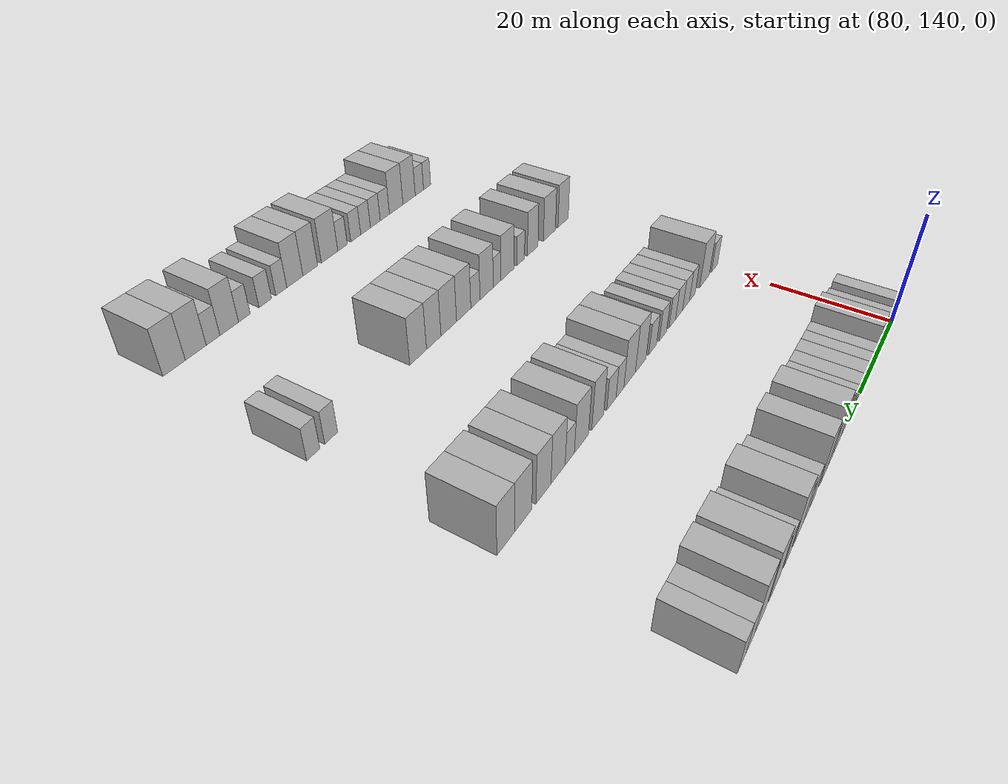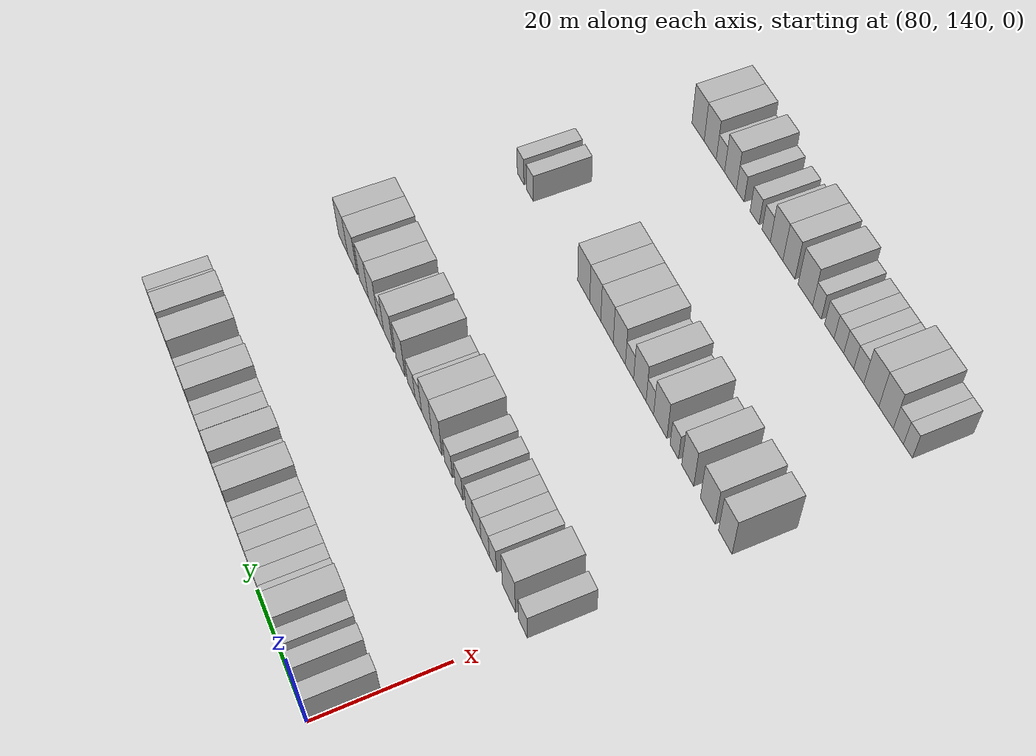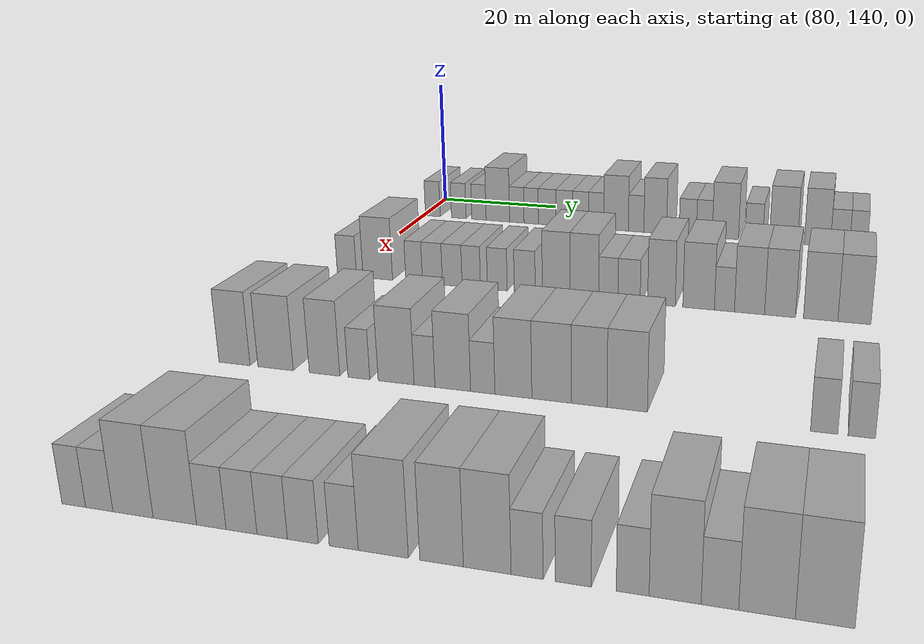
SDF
<sdf version="1.6">
 <world name="default">
  <model name="building_623">
   <static>1</static>
   <pose>85.0000 141.6299 0 0.000000 0.000000 0.000000</pose>
   <link name="link">
    <pose>0 0 3.00 0 0 0</pose>
    <collision name="collision"><geometry><box><size>10.0000 2.6080 6.0000</size></box></geometry></collision>
    <visual name="visual">
     <cast_shadows>0</cast_shadows>
     <geometry><box><size>10.0000 2.6080 6.0000</size></box></geometry>
     <material>
      <script>
       <uri>model://HANNAS_wall/materials/scripts</uri>
       <uri>model://HANNAS_wall/materials/textures</uri>
       <name>vrc/HANNAS_wall</name>
      </script>
     </material>
    </visual>
   </link>
  </model>
  <model name="building_624">
   <static>1</static>
   <pose>85.0000 146.2036 0 0.000000 0.000000 0.000000</pose>
   <link name="link">
    <pose>0 0 3.00 0 0 0</pose>
    <collision name="collision"><geometry><box><size>10.0000 2.5395 6.0000</size></box></geometry></collision>
    <visual name="visual">
     <cast_shadows>0</cast_shadows>
     <geometry><box><size>10.0000 2.5395 6.0000</size></box></geometry>
     <material>
      <script>
       <uri>model://HANNAS_wall/materials/scripts</uri>
       <uri>model://HANNAS_wall/materials/textures</uri>
       <name>vrc/HANNAS_wall</name>
      </script>
     </material>
    </visual>
   </link>
  </model>
  <model name="building_625">
   <static>1</static>
   <pose>85.0000 149.7240 0 0.000000 0.000000 0.000000</pose>
   <link name="link">
    <pose>0 0 3.00 0 0 0</pose>
    <collision name="collision"><geometry><box><size>10.0000 2.5013 6.0000</size></box></geometry></collision>
    <visual name="visual">
     <cast_shadows>0</cast_shadows>
     <geometry><box><size>10.0000 2.5013 6.0000</size></box></geometry>
     <material>
      <script>
       <uri>model://HANNAS_wall/materials/scripts</uri>
       <uri>model://HANNAS_wall/materials/textures</uri>
       <name>vrc/HANNAS_wall</name>
      </script>
     </material>
    </visual>
   </link>
  </model>
  <model name="building_626">
   <static>1</static>
   <pose>85.0000 152.9900 0 0.000000 0.000000 0.000000</pose>
   <link name="link">
    <pose>0 0 4.50 0 0 0</pose>
    <collision name="collision"><geometry><box><size>10.0000 4.0306 9.0000</size></box></geometry></collision>
    <visual name="visual">
     <cast_shadows>0</cast_shadows>
     <geometry><box><size>10.0000 4.0306 9.0000</size></box></geometry>
     <material>
      <script>
       <uri>model://HANNAS_wall/materials/scripts</uri>
       <uri>model://HANNAS_wall/materials/textures</uri>
       <name>vrc/HANNAS_wall</name>
      </script>
     </material>
    </visual>
   </link>
  </model>
  <model name="building_627">
   <static>1</static>
   <pose>85.0000 156.2433 0 0.000000 0.000000 0.000000</pose>
   <link name="link">
    <pose>0 0 3.00 0 0 0</pose>
    <collision name="collision"><geometry><box><size>10.0000 2.4761 6.0000</size></box></geometry></collision>
    <visual name="visual">
     <cast_shadows>0</cast_shadows>
     <geometry><box><size>10.0000 2.4761 6.0000</size></box></geometry>
     <material>
      <script>
       <uri>model://HANNAS_wall/materials/scripts</uri>
       <uri>model://HANNAS_wall/materials/textures</uri>
       <name>vrc/HANNAS_wall</name>
      </script>
     </material>
    </visual>
   </link>
  </model>
  <model name="building_628">
   <static>1</static>
   <pose>85.0000 158.6928 0 0.000000 0.000000 0.000000</pose>
   <link name="link">
    <pose>0 0 3.00 0 0 0</pose>
    <collision name="collision"><geometry><box><size>10.0000 2.4228 6.0000</size></box></geometry></collision>
    <visual name="visual">
     <cast_shadows>0</cast_shadows>
     <geometry><box><size>10.0000 2.4228 6.0000</size></box></geometry>
     <material>
      <script>
       <uri>model://HANNAS_wall/materials/scripts</uri>
       <uri>model://HANNAS_wall/materials/textures</uri>
       <name>vrc/HANNAS_wall</name>
      </script>
     </material>
    </visual>
   </link>
  </model>
  <model name="building_629">
   <static>1</static>
   <pose>85.0000 161.3838 0 0.000000 0.000000 0.000000</pose>
   <link name="link">
    <pose>0 0 3.00 0 0 0</pose>
    <collision name="collision"><geometry><box><size>10.0000 2.9592 6.0000</size></box></geometry></collision>
    <visual name="visual">
     <cast_shadows>0</cast_shadows>
     <geometry><box><size>10.0000 2.9592 6.0000</size></box></geometry>
     <material>
      <script>
       <uri>model://HANNAS_wall/materials/scripts</uri>
       <uri>model://HANNAS_wall/materials/textures</uri>
       <name>vrc/HANNAS_wall</name>
      </script>
     </material>
    </visual>
   </link>
  </model>
  <model name="building_630">
   <static>1</static>
   <pose>85.0000 164.2709 0 0.000000 0.000000 0.000000</pose>
   <link name="link">
    <pose>0 0 3.00 0 0 0</pose>
    <collision name="collision"><geometry><box><size>10.0000 2.8151 6.0000</size></box></geometry></collision>
    <visual name="visual">
     <cast_shadows>0</cast_shadows>
     <geometry><box><size>10.0000 2.8151 6.0000</size></box></geometry>
     <material>
      <script>
       <uri>model://HANNAS_wall/materials/scripts</uri>
       <uri>model://HANNAS_wall/materials/textures</uri>
       <name>vrc/HANNAS_wall</name>
      </script>
     </material>
    </visual>
   </link>
  </model>
  <model name="building_631">
   <static>1</static>
   <pose>85.0000 166.9735 0 0.000000 0.000000 0.000000</pose>
   <link name="link">
    <pose>0 0 3.00 0 0 0</pose>
    <collision name="collision"><geometry><box><size>10.0000 2.5901 6.0000</size></box></geometry></collision>
    <visual name="visual">
     <cast_shadows>0</cast_shadows>
     <geometry><box><size>10.0000 2.5901 6.0000</size></box></geometry>
     <material>
      <script>
       <uri>model://HANNAS_wall/materials/scripts</uri>
       <uri>model://HANNAS_wall/materials/textures</uri>
       <name>vrc/HANNAS_wall</name>
      </script>
     </material>
    </visual>
   </link>
  </model>
  <model name="building_632">
   <static>1</static>
   <pose>85.0000 169.5380 0 0.000000 0.000000 0.000000</pose>
   <link name="link">
    <pose>0 0 3.00 0 0 0</pose>
    <collision name="collision"><geometry><box><size>10.0000 2.5390 6.0000</size></box></geometry></collision>
    <visual name="visual">
     <cast_shadows>0</cast_shadows>
     <geometry><box><size>10.0000 2.5390 6.0000</size></box></geometry>
     <material>
      <script>
       <uri>model://HANNAS_wall/materials/scripts</uri>
       <uri>model://HANNAS_wall/materials/textures</uri>
       <name>vrc/HANNAS_wall</name>
      </script>
     </material>
    </visual>
   </link>
  </model>
  <model name="building_633">
   <static>1</static>
   <pose>85.0000 172.8119 0 0.000000 0.000000 0.000000</pose>
   <link name="link">
    <pose>0 0 4.50 0 0 0</pose>
    <collision name="collision"><geometry><box><size>10.0000 4.0086 9.0000</size></box></geometry></collision>
    <visual name="visual">
     <cast_shadows>0</cast_shadows>
     <geometry><box><size>10.0000 4.0086 9.0000</size></box></geometry>
     <material>
      <script>
       <uri>model://HANNAS_wall/materials/scripts</uri>
       <uri>model://HANNAS_wall/materials/textures</uri>
       <name>vrc/HANNAS_wall</name>
      </script>
     </material>
    </visual>
   </link>
  </model>
  <model name="building_634">
   <static>1</static>
   <pose>85.0000 176.0708 0 0.000000 0.000000 0.000000</pose>
   <link name="link">
    <pose>0 0 3.00 0 0 0</pose>
    <collision name="collision"><geometry><box><size>10.0000 2.5092 6.0000</size></box></geometry></collision>
    <visual name="visual">
     <cast_shadows>0</cast_shadows>
     <geometry><box><size>10.0000 2.5092 6.0000</size></box></geometry>
     <material>
      <script>
       <uri>model://HANNAS_wall/materials/scripts</uri>
       <uri>model://HANNAS_wall/materials/textures</uri>
       <name>vrc/HANNAS_wall</name>
      </script>
     </material>
    </visual>
   </link>
  </model>
  <model name="building_635">
   <static>1</static>
   <pose>85.0000 179.1409 0 0.000000 0.000000 0.000000</pose>
   <link name="link">
    <pose>0 0 4.50 0 0 0</pose>
    <collision name="collision"><geometry><box><size>10.0000 3.6311 9.0000</size></box></geometry></collision>
    <visual name="visual">
     <cast_shadows>0</cast_shadows>
     <geometry><box><size>10.0000 3.6311 9.0000</size></box></geometry>
     <material>
      <script>
       <uri>model://HANNAS_wall/materials/scripts</uri>
       <uri>model://HANNAS_wall/materials/textures</uri>
       <name>vrc/HANNAS_wall</name>
      </script>
     </material>
    </visual>
   </link>
  </model>
  <model name="building_636">
   <static>1</static>
   <pose>85.0000 184.3225 0 0.000000 0.000000 0.000000</pose>
   <link name="link">
    <pose>0 0 3.00 0 0 0</pose>
    <collision name="collision"><geometry><box><size>10.0000 2.7321 6.0000</size></box></geometry></collision>
    <visual name="visual">
     <cast_shadows>0</cast_shadows>
     <geometry><box><size>10.0000 2.7321 6.0000</size></box></geometry>
     <material>
      <script>
       <uri>model://HANNAS_wall/materials/scripts</uri>
       <uri>model://HANNAS_wall/materials/textures</uri>
       <name>vrc/HANNAS_wall</name>
      </script>
     </material>
    </visual>
   </link>
  </model>
  <model name="building_637">
   <static>1</static>
   <pose>85.0000 186.9296 0 0.000000 0.000000 0.000000</pose>
   <link name="link">
    <pose>0 0 3.00 0 0 0</pose>
    <collision name="collision"><geometry><box><size>10.0000 2.4823 6.0000</size></box></geometry></collision>
    <visual name="visual">
     <cast_shadows>0</cast_shadows>
     <geometry><box><size>10.0000 2.4823 6.0000</size></box></geometry>
     <material>
      <script>
       <uri>model://HANNAS_wall/materials/scripts</uri>
       <uri>model://HANNAS_wall/materials/textures</uri>
       <name>vrc/HANNAS_wall</name>
      </script>
     </material>
    </visual>
   </link>
  </model>
  <model name="building_638">
   <static>1</static>
   <pose>85.0000 190.2188 0 0.000000 0.000000 0.000000</pose>
   <link name="link">
    <pose>0 0 4.50 0 0 0</pose>
    <collision name="collision"><geometry><box><size>10.0000 4.0960 9.0000</size></box></geometry></collision>
    <visual name="visual">
     <cast_shadows>0</cast_shadows>
     <geometry><box><size>10.0000 4.0960 9.0000</size></box></geometry>
     <material>
      <script>
       <uri>model://HANNAS_wall/materials/scripts</uri>
       <uri>model://HANNAS_wall/materials/textures</uri>
       <name>vrc/HANNAS_wall</name>
      </script>
     </material>
    </visual>
   </link>
  </model>
  <model name="building_639">
   <static>1</static>
   <pose>85.0000 194.6407 0 0.000000 0.000000 0.000000</pose>
   <link name="link">
    <pose>0 0 3.00 0 0 0</pose>
    <collision name="collision"><geometry><box><size>10.0000 2.7478 6.0000</size></box></geometry></collision>
    <visual name="visual">
     <cast_shadows>0</cast_shadows>
     <geometry><box><size>10.0000 2.7478 6.0000</size></box></geometry>
     <material>
      <script>
       <uri>model://HANNAS_wall/materials/scripts</uri>
       <uri>model://HANNAS_wall/materials/textures</uri>
       <name>vrc/HANNAS_wall</name>
      </script>
     </material>
    </visual>
   </link>
  </model>
  <model name="building_640">
   <static>1</static>
   <pose>85.0000 199.1554 0 0.000000 0.000000 0.000000</pose>
   <link name="link">
    <pose>0 0 4.50 0 0 0</pose>
    <collision name="collision"><geometry><box><size>10.0000 4.2816 9.0000</size></box></geometry></collision>
    <visual name="visual">
     <cast_shadows>0</cast_shadows>
     <geometry><box><size>10.0000 4.2816 9.0000</size></box></geometry>
     <material>
      <script>
       <uri>model://HANNAS_wall/materials/scripts</uri>
       <uri>model://HANNAS_wall/materials/textures</uri>
       <name>vrc/HANNAS_wall</name>
      </script>
     </material>
    </visual>
   </link>
  </model>
  <model name="building_641">
   <static>1</static>
   <pose>85.0000 204.2524 0 0.000000 0.000000 0.000000</pose>
   <link name="link">
    <pose>0 0 4.50 0 0 0</pose>
    <collision name="collision"><geometry><box><size>10.0000 3.9124 9.0000</size></box></geometry></collision>
    <visual name="visual">
     <cast_shadows>0</cast_shadows>
     <geometry><box><size>10.0000 3.9124 9.0000</size></box></geometry>
     <material>
      <script>
       <uri>model://HANNAS_wall/materials/scripts</uri>
       <uri>model://HANNAS_wall/materials/textures</uri>
       <name>vrc/HANNAS_wall</name>
      </script>
     </material>
    </visual>
   </link>
  </model>
  <model name="building_642">
   <static>1</static>
   <pose>85.0000 207.6236 0 0.000000 0.000000 0.000000</pose>
   <link name="link">
    <pose>0 0 3.00 0 0 0</pose>
    <collision name="collision"><geometry><box><size>10.0000 2.8298 6.0000</size></box></geometry></collision>
    <visual name="visual">
     <cast_shadows>0</cast_shadows>
     <geometry><box><size>10.0000 2.8298 6.0000</size></box></geometry>
     <material>
      <script>
       <uri>model://HANNAS_wall/materials/scripts</uri>
       <uri>model://HANNAS_wall/materials/textures</uri>
       <name>vrc/HANNAS_wall</name>
      </script>
     </material>
    </visual>
   </link>
  </model>
  <model name="building_643">
   <static>1</static>
   <pose>85.0000 210.3365 0 0.000000 0.000000 0.000000</pose>
   <link name="link">
    <pose>0 0 3.00 0 0 0</pose>
    <collision name="collision"><geometry><box><size>10.0000 2.5960 6.0000</size></box></geometry></collision>
    <visual name="visual">
     <cast_shadows>0</cast_shadows>
     <geometry><box><size>10.0000 2.5960 6.0000</size></box></geometry>
     <material>
      <script>
       <uri>model://HANNAS_wall/materials/scripts</uri>
       <uri>model://HANNAS_wall/materials/textures</uri>
       <name>vrc/HANNAS_wall</name>
      </script>
     </material>
    </visual>
   </link>
  </model>
  <model name="building_867">
   <static>1</static>
   <pose>115.0000 140.6493 0 0.000000 0.000000 0.000000</pose>
   <link name="link">
    <pose>0 0 3.00 0 0 0</pose>
    <collision name="collision"><geometry><box><size>10.0000 2.9138 6.0000</size></box></geometry></collision>
    <visual name="visual">
     <cast_shadows>0</cast_shadows>
     <geometry><box><size>10.0000 2.9138 6.0000</size></box></geometry>
     <material>
      <script>
       <uri>model://HANNAS_wall/materials/scripts</uri>
       <uri>model://HANNAS_wall/materials/textures</uri>
       <name>vrc/HANNAS_wall</name>
      </script>
     </material>
    </visual>
   </link>
  </model>
  <model name="building_868">
   <static>1</static>
   <pose>115.0000 145.3303 0 0.000000 0.000000 0.000000</pose>
   <link name="link">
    <pose>0 0 4.50 0 0 0</pose>
    <collision name="collision"><geometry><box><size>10.0000 4.4482 9.0000</size></box></geometry></collision>
    <visual name="visual">
     <cast_shadows>0</cast_shadows>
     <geometry><box><size>10.0000 4.4482 9.0000</size></box></geometry>
     <material>
      <script>
       <uri>model://HANNAS_wall/materials/scripts</uri>
       <uri>model://HANNAS_wall/materials/textures</uri>
       <name>vrc/HANNAS_wall</name>
      </script>
     </material>
    </visual>
   </link>
  </model>
  <model name="building_869">
   <static>1</static>
   <pose>115.0000 150.7834 0 0.000000 0.000000 0.000000</pose>
   <link name="link">
    <pose>0 0 3.00 0 0 0</pose>
    <collision name="collision"><geometry><box><size>10.0000 2.4580 6.0000</size></box></geometry></collision>
    <visual name="visual">
     <cast_shadows>0</cast_shadows>
     <geometry><box><size>10.0000 2.4580 6.0000</size></box></geometry>
     <material>
      <script>
       <uri>model://HANNAS_wall/materials/scripts</uri>
       <uri>model://HANNAS_wall/materials/textures</uri>
       <name>vrc/HANNAS_wall</name>
      </script>
     </material>
    </visual>
   </link>
  </model>
  <model name="building_870">
   <static>1</static>
   <pose>115.0000 153.4814 0 0.000000 0.000000 0.000000</pose>
   <link name="link">
    <pose>0 0 3.00 0 0 0</pose>
    <collision name="collision"><geometry><box><size>10.0000 2.9379 6.0000</size></box></geometry></collision>
    <visual name="visual">
     <cast_shadows>0</cast_shadows>
     <geometry><box><size>10.0000 2.9379 6.0000</size></box></geometry>
     <material>
      <script>
       <uri>model://HANNAS_wall/materials/scripts</uri>
       <uri>model://HANNAS_wall/materials/textures</uri>
       <name>vrc/HANNAS_wall</name>
      </script>
     </material>
    </visual>
   </link>
  </model>
  <model name="building_871">
   <static>1</static>
   <pose>115.0000 156.3873 0 0.000000 0.000000 0.000000</pose>
   <link name="link">
    <pose>0 0 3.00 0 0 0</pose>
    <collision name="collision"><geometry><box><size>10.0000 2.8739 6.0000</size></box></geometry></collision>
    <visual name="visual">
     <cast_shadows>0</cast_shadows>
     <geometry><box><size>10.0000 2.8739 6.0000</size></box></geometry>
     <material>
      <script>
       <uri>model://HANNAS_wall/materials/scripts</uri>
       <uri>model://HANNAS_wall/materials/textures</uri>
       <name>vrc/HANNAS_wall</name>
      </script>
     </material>
    </visual>
   </link>
  </model>
  <model name="building_872">
   <static>1</static>
   <pose>115.0000 159.1533 0 0.000000 0.000000 0.000000</pose>
   <link name="link">
    <pose>0 0 3.00 0 0 0</pose>
    <collision name="collision"><geometry><box><size>10.0000 2.6580 6.0000</size></box></geometry></collision>
    <visual name="visual">
     <cast_shadows>0</cast_shadows>
     <geometry><box><size>10.0000 2.6580 6.0000</size></box></geometry>
     <material>
      <script>
       <uri>model://HANNAS_wall/materials/scripts</uri>
       <uri>model://HANNAS_wall/materials/textures</uri>
       <name>vrc/HANNAS_wall</name>
      </script>
     </material>
    </visual>
   </link>
  </model>
  <model name="building_873">
   <static>1</static>
   <pose>115.0000 162.8984 0 0.000000 0.000000 0.000000</pose>
   <link name="link">
    <pose>0 0 3.00 0 0 0</pose>
    <collision name="collision"><geometry><box><size>10.0000 2.8322 6.0000</size></box></geometry></collision>
    <visual name="visual">
     <cast_shadows>0</cast_shadows>
     <geometry><box><size>10.0000 2.8322 6.0000</size></box></geometry>
     <material>
      <script>
       <uri>model://HANNAS_wall/materials/scripts</uri>
       <uri>model://HANNAS_wall/materials/textures</uri>
       <name>vrc/HANNAS_wall</name>
      </script>
     </material>
    </visual>
   </link>
  </model>
  <model name="building_874">
   <static>1</static>
   <pose>115.0000 166.7925 0 0.000000 0.000000 0.000000</pose>
   <link name="link">
    <pose>0 0 3.00 0 0 0</pose>
    <collision name="collision"><geometry><box><size>10.0000 2.9561 6.0000</size></box></geometry></collision>
    <visual name="visual">
     <cast_shadows>0</cast_shadows>
     <geometry><box><size>10.0000 2.9561 6.0000</size></box></geometry>
     <material>
      <script>
       <uri>model://HANNAS_wall/materials/scripts</uri>
       <uri>model://HANNAS_wall/materials/textures</uri>
       <name>vrc/HANNAS_wall</name>
      </script>
     </material>
    </visual>
   </link>
  </model>
  <model name="building_875">
   <static>1</static>
   <pose>115.0000 171.1844 0 0.000000 0.000000 0.000000</pose>
   <link name="link">
    <pose>0 0 4.50 0 0 0</pose>
    <collision name="collision"><geometry><box><size>10.0000 3.8277 9.0000</size></box></geometry></collision>
    <visual name="visual">
     <cast_shadows>0</cast_shadows>
     <geometry><box><size>10.0000 3.8277 9.0000</size></box></geometry>
     <material>
      <script>
       <uri>model://HANNAS_wall/materials/scripts</uri>
       <uri>model://HANNAS_wall/materials/textures</uri>
       <name>vrc/HANNAS_wall</name>
      </script>
     </material>
    </visual>
   </link>
  </model>
  <model name="building_876">
   <static>1</static>
   <pose>115.0000 175.0791 0 0.000000 0.000000 0.000000</pose>
   <link name="link">
    <pose>0 0 4.50 0 0 0</pose>
    <collision name="collision"><geometry><box><size>10.0000 3.9616 9.0000</size></box></geometry></collision>
    <visual name="visual">
     <cast_shadows>0</cast_shadows>
     <geometry><box><size>10.0000 3.9616 9.0000</size></box></geometry>
     <material>
      <script>
       <uri>model://HANNAS_wall/materials/scripts</uri>
       <uri>model://HANNAS_wall/materials/textures</uri>
       <name>vrc/HANNAS_wall</name>
      </script>
     </material>
    </visual>
   </link>
  </model>
  <model name="building_877">
   <static>1</static>
   <pose>115.0000 178.3545 0 0.000000 0.000000 0.000000</pose>
   <link name="link">
    <pose>0 0 3.00 0 0 0</pose>
    <collision name="collision"><geometry><box><size>10.0000 2.5892 6.0000</size></box></geometry></collision>
    <visual name="visual">
     <cast_shadows>0</cast_shadows>
     <geometry><box><size>10.0000 2.5892 6.0000</size></box></geometry>
     <material>
      <script>
       <uri>model://HANNAS_wall/materials/scripts</uri>
       <uri>model://HANNAS_wall/materials/textures</uri>
       <name>vrc/HANNAS_wall</name>
      </script>
     </material>
    </visual>
   </link>
  </model>
  <model name="building_878">
   <static>1</static>
   <pose>115.0000 181.1488 0 0.000000 0.000000 0.000000</pose>
   <link name="link">
    <pose>0 0 3.00 0 0 0</pose>
    <collision name="collision"><geometry><box><size>10.0000 2.9994 6.0000</size></box></geometry></collision>
    <visual name="visual">
     <cast_shadows>0</cast_shadows>
     <geometry><box><size>10.0000 2.9994 6.0000</size></box></geometry>
     <material>
      <script>
       <uri>model://HANNAS_wall/materials/scripts</uri>
       <uri>model://HANNAS_wall/materials/textures</uri>
       <name>vrc/HANNAS_wall</name>
      </script>
     </material>
    </visual>
   </link>
  </model>
  <model name="building_879">
   <static>1</static>
   <pose>115.0000 185.4763 0 0.000000 0.000000 0.000000</pose>
   <link name="link">
    <pose>0 0 4.50 0 0 0</pose>
    <collision name="collision"><geometry><box><size>10.0000 3.6555 9.0000</size></box></geometry></collision>
    <visual name="visual">
     <cast_shadows>0</cast_shadows>
     <geometry><box><size>10.0000 3.6555 9.0000</size></box></geometry>
     <material>
      <script>
       <uri>model://HANNAS_wall/materials/scripts</uri>
       <uri>model://HANNAS_wall/materials/textures</uri>
       <name>vrc/HANNAS_wall</name>
      </script>
     </material>
    </visual>
   </link>
  </model>
  <model name="building_880">
   <static>1</static>
   <pose>115.0000 190.3672 0 0.000000 0.000000 0.000000</pose>
   <link name="link">
    <pose>0 0 4.50 0 0 0</pose>
    <collision name="collision"><geometry><box><size>10.0000 4.1264 9.0000</size></box></geometry></collision>
    <visual name="visual">
     <cast_shadows>0</cast_shadows>
     <geometry><box><size>10.0000 4.1264 9.0000</size></box></geometry>
     <material>
      <script>
       <uri>model://HANNAS_wall/materials/scripts</uri>
       <uri>model://HANNAS_wall/materials/textures</uri>
       <name>vrc/HANNAS_wall</name>
      </script>
     </material>
    </visual>
   </link>
  </model>
  <model name="building_881">
   <static>1</static>
   <pose>115.0000 193.7246 0 0.000000 0.000000 0.000000</pose>
   <link name="link">
    <pose>0 0 3.00 0 0 0</pose>
    <collision name="collision"><geometry><box><size>10.0000 2.5883 6.0000</size></box></geometry></collision>
    <visual name="visual">
     <cast_shadows>0</cast_shadows>
     <geometry><box><size>10.0000 2.5883 6.0000</size></box></geometry>
     <material>
      <script>
       <uri>model://HANNAS_wall/materials/scripts</uri>
       <uri>model://HANNAS_wall/materials/textures</uri>
       <name>vrc/HANNAS_wall</name>
      </script>
     </material>
    </visual>
   </link>
  </model>
  <model name="building_882">
   <static>1</static>
   <pose>115.0000 196.9432 0 0.000000 0.000000 0.000000</pose>
   <link name="link">
    <pose>0 0 4.50 0 0 0</pose>
    <collision name="collision"><geometry><box><size>10.0000 3.8490 9.0000</size></box></geometry></collision>
    <visual name="visual">
     <cast_shadows>0</cast_shadows>
     <geometry><box><size>10.0000 3.8490 9.0000</size></box></geometry>
     <material>
      <script>
       <uri>model://HANNAS_wall/materials/scripts</uri>
       <uri>model://HANNAS_wall/materials/textures</uri>
       <name>vrc/HANNAS_wall</name>
      </script>
     </material>
    </visual>
   </link>
  </model>
  <model name="building_883">
   <static>1</static>
   <pose>115.0000 200.8149 0 0.000000 0.000000 0.000000</pose>
   <link name="link">
    <pose>0 0 4.50 0 0 0</pose>
    <collision name="collision"><geometry><box><size>10.0000 3.8944 9.0000</size></box></geometry></collision>
    <visual name="visual">
     <cast_shadows>0</cast_shadows>
     <geometry><box><size>10.0000 3.8944 9.0000</size></box></geometry>
     <material>
      <script>
       <uri>model://HANNAS_wall/materials/scripts</uri>
       <uri>model://HANNAS_wall/materials/textures</uri>
       <name>vrc/HANNAS_wall</name>
      </script>
     </material>
    </visual>
   </link>
  </model>
  <model name="building_884">
   <static>1</static>
   <pose>115.0000 205.8900 0 0.000000 0.000000 0.000000</pose>
   <link name="link">
    <pose>0 0 4.50 0 0 0</pose>
    <collision name="collision"><geometry><box><size>10.0000 4.2558 9.0000</size></box></geometry></collision>
    <visual name="visual">
     <cast_shadows>0</cast_shadows>
     <geometry><box><size>10.0000 4.2558 9.0000</size></box></geometry>
     <material>
      <script>
       <uri>model://HANNAS_wall/materials/scripts</uri>
       <uri>model://HANNAS_wall/materials/textures</uri>
       <name>vrc/HANNAS_wall</name>
      </script>
     </material>
    </visual>
   </link>
  </model>
  <model name="building_885">
   <static>1</static>
   <pose>115.0000 210.0375 0 0.000000 0.000000 0.000000</pose>
   <link name="link">
    <pose>0 0 4.50 0 0 0</pose>
    <collision name="collision"><geometry><box><size>10.0000 4.0393 9.0000</size></box></geometry></collision>
    <visual name="visual">
     <cast_shadows>0</cast_shadows>
     <geometry><box><size>10.0000 4.0393 9.0000</size></box></geometry>
     <material>
      <script>
       <uri>model://HANNAS_wall/materials/scripts</uri>
       <uri>model://HANNAS_wall/materials/textures</uri>
       <name>vrc/HANNAS_wall</name>
      </script>
     </material>
    </visual>
   </link>
  </model>
  <model name="building_1096">
   <static>1</static>
   <pose>145.0000 141.1360 0 0.000000 0.000000 0.000000</pose>
   <link name="link">
    <pose>0 0 4.50 0 0 0</pose>
    <collision name="collision"><geometry><box><size>10.0000 3.9814 9.0000</size></box></geometry></collision>
    <visual name="visual">
     <cast_shadows>0</cast_shadows>
     <geometry><box><size>10.0000 3.9814 9.0000</size></box></geometry>
     <material>
      <script>
       <uri>model://HANNAS_wall/materials/scripts</uri>
       <uri>model://HANNAS_wall/materials/textures</uri>
       <name>vrc/HANNAS_wall</name>
      </script>
     </material>
    </visual>
   </link>
  </model>
  <model name="building_1097">
   <static>1</static>
   <pose>145.0000 146.3548 0 0.000000 0.000000 0.000000</pose>
   <link name="link">
    <pose>0 0 4.50 0 0 0</pose>
    <collision name="collision"><geometry><box><size>10.0000 4.4563 9.0000</size></box></geometry></collision>
    <visual name="visual">
     <cast_shadows>0</cast_shadows>
     <geometry><box><size>10.0000 4.4563 9.0000</size></box></geometry>
     <material>
      <script>
       <uri>model://HANNAS_wall/materials/scripts</uri>
       <uri>model://HANNAS_wall/materials/textures</uri>
       <name>vrc/HANNAS_wall</name>
      </script>
     </material>
    </visual>
   </link>
  </model>
  <model name="building_1098">
   <static>1</static>
   <pose>145.0000 152.4579 0 0.000000 0.000000 0.000000</pose>
   <link name="link">
    <pose>0 0 4.50 0 0 0</pose>
    <collision name="collision"><geometry><box><size>10.0000 3.7498 9.0000</size></box></geometry></collision>
    <visual name="visual">
     <cast_shadows>0</cast_shadows>
     <geometry><box><size>10.0000 3.7498 9.0000</size></box></geometry>
     <material>
      <script>
       <uri>model://HANNAS_wall/materials/scripts</uri>
       <uri>model://HANNAS_wall/materials/textures</uri>
       <name>vrc/HANNAS_wall</name>
      </script>
     </material>
    </visual>
   </link>
  </model>
  <model name="building_1099">
   <static>1</static>
   <pose>145.0000 156.6537 0 0.000000 0.000000 0.000000</pose>
   <link name="link">
    <pose>0 0 3.00 0 0 0</pose>
    <collision name="collision"><geometry><box><size>10.0000 2.6420 6.0000</size></box></geometry></collision>
    <visual name="visual">
     <cast_shadows>0</cast_shadows>
     <geometry><box><size>10.0000 2.6420 6.0000</size></box></geometry>
     <material>
      <script>
       <uri>model://HANNAS_wall/materials/scripts</uri>
       <uri>model://HANNAS_wall/materials/textures</uri>
       <name>vrc/HANNAS_wall</name>
      </script>
     </material>
    </visual>
   </link>
  </model>
  <model name="building_1100">
   <static>1</static>
   <pose>145.0000 161.1153 0 0.000000 0.000000 0.000000</pose>
   <link name="link">
    <pose>0 0 4.50 0 0 0</pose>
    <collision name="collision"><geometry><box><size>10.0000 4.2812 9.0000</size></box></geometry></collision>
    <visual name="visual">
     <cast_shadows>0</cast_shadows>
     <geometry><box><size>10.0000 4.2812 9.0000</size></box></geometry>
     <material>
      <script>
       <uri>model://HANNAS_wall/materials/scripts</uri>
       <uri>model://HANNAS_wall/materials/textures</uri>
       <name>vrc/HANNAS_wall</name>
      </script>
     </material>
    </visual>
   </link>
  </model>
  <model name="building_1101">
   <static>1</static>
   <pose>145.0000 164.4820 0 0.000000 0.000000 0.000000</pose>
   <link name="link">
    <pose>0 0 3.00 0 0 0</pose>
    <collision name="collision"><geometry><box><size>10.0000 2.4524 6.0000</size></box></geometry></collision>
    <visual name="visual">
     <cast_shadows>0</cast_shadows>
     <geometry><box><size>10.0000 2.4524 6.0000</size></box></geometry>
     <material>
      <script>
       <uri>model://HANNAS_wall/materials/scripts</uri>
       <uri>model://HANNAS_wall/materials/textures</uri>
       <name>vrc/HANNAS_wall</name>
      </script>
     </material>
    </visual>
   </link>
  </model>
  <model name="building_1102">
   <static>1</static>
   <pose>145.0000 167.7723 0 0.000000 0.000000 0.000000</pose>
   <link name="link">
    <pose>0 0 4.50 0 0 0</pose>
    <collision name="collision"><geometry><box><size>10.0000 4.1281 9.0000</size></box></geometry></collision>
    <visual name="visual">
     <cast_shadows>0</cast_shadows>
     <geometry><box><size>10.0000 4.1281 9.0000</size></box></geometry>
     <material>
      <script>
       <uri>model://HANNAS_wall/materials/scripts</uri>
       <uri>model://HANNAS_wall/materials/textures</uri>
       <name>vrc/HANNAS_wall</name>
      </script>
     </material>
    </visual>
   </link>
  </model>
  <model name="building_1103">
   <static>1</static>
   <pose>145.0000 171.2249 0 0.000000 0.000000 0.000000</pose>
   <link name="link">
    <pose>0 0 3.00 0 0 0</pose>
    <collision name="collision"><geometry><box><size>10.0000 2.7771 6.0000</size></box></geometry></collision>
    <visual name="visual">
     <cast_shadows>0</cast_shadows>
     <geometry><box><size>10.0000 2.7771 6.0000</size></box></geometry>
     <material>
      <script>
       <uri>model://HANNAS_wall/materials/scripts</uri>
       <uri>model://HANNAS_wall/materials/textures</uri>
       <name>vrc/HANNAS_wall</name>
      </script>
     </material>
    </visual>
   </link>
  </model>
  <model name="building_1104">
   <static>1</static>
   <pose>145.0000 174.6940 0 0.000000 0.000000 0.000000</pose>
   <link name="link">
    <pose>0 0 4.50 0 0 0</pose>
    <collision name="collision"><geometry><box><size>10.0000 4.1612 9.0000</size></box></geometry></collision>
    <visual name="visual">
     <cast_shadows>0</cast_shadows>
     <geometry><box><size>10.0000 4.1612 9.0000</size></box></geometry>
     <material>
      <script>
       <uri>model://HANNAS_wall/materials/scripts</uri>
       <uri>model://HANNAS_wall/materials/textures</uri>
       <name>vrc/HANNAS_wall</name>
      </script>
     </material>
    </visual>
   </link>
  </model>
  <model name="building_1105">
   <static>1</static>
   <pose>145.0000 178.9468 0 0.000000 0.000000 0.000000</pose>
   <link name="link">
    <pose>0 0 4.50 0 0 0</pose>
    <collision name="collision"><geometry><box><size>10.0000 4.3445 9.0000</size></box></geometry></collision>
    <visual name="visual">
     <cast_shadows>0</cast_shadows>
     <geometry><box><size>10.0000 4.3445 9.0000</size></box></geometry>
     <material>
      <script>
       <uri>model://HANNAS_wall/materials/scripts</uri>
       <uri>model://HANNAS_wall/materials/textures</uri>
       <name>vrc/HANNAS_wall</name>
      </script>
     </material>
    </visual>
   </link>
  </model>
  <model name="building_1106">
   <static>1</static>
   <pose>145.0000 183.0708 0 0.000000 0.000000 0.000000</pose>
   <link name="link">
    <pose>0 0 4.50 0 0 0</pose>
    <collision name="collision"><geometry><box><size>10.0000 3.9035 9.0000</size></box></geometry></collision>
    <visual name="visual">
     <cast_shadows>0</cast_shadows>
     <geometry><box><size>10.0000 3.9035 9.0000</size></box></geometry>
     <material>
      <script>
       <uri>model://HANNAS_wall/materials/scripts</uri>
       <uri>model://HANNAS_wall/materials/textures</uri>
       <name>vrc/HANNAS_wall</name>
      </script>
     </material>
    </visual>
   </link>
  </model>
  <model name="building_1107">
   <static>1</static>
   <pose>145.0000 187.1842 0 0.000000 0.000000 0.000000</pose>
   <link name="link">
    <pose>0 0 4.50 0 0 0</pose>
    <collision name="collision"><geometry><box><size>10.0000 4.3233 9.0000</size></box></geometry></collision>
    <visual name="visual">
     <cast_shadows>0</cast_shadows>
     <geometry><box><size>10.0000 4.3233 9.0000</size></box></geometry>
     <material>
      <script>
       <uri>model://HANNAS_wall/materials/scripts</uri>
       <uri>model://HANNAS_wall/materials/textures</uri>
       <name>vrc/HANNAS_wall</name>
      </script>
     </material>
    </visual>
   </link>
  </model>
  <model name="building_1108">
   <static>1</static>
   <pose>145.0000 207.3778 0 0.000000 0.000000 0.000000</pose>
   <link name="link">
    <pose>0 0 3.00 0 0 0</pose>
    <collision name="collision"><geometry><box><size>10.0000 2.6879 6.0000</size></box></geometry></collision>
    <visual name="visual">
     <cast_shadows>0</cast_shadows>
     <geometry><box><size>10.0000 2.6879 6.0000</size></box></geometry>
     <material>
      <script>
       <uri>model://HANNAS_wall/materials/scripts</uri>
       <uri>model://HANNAS_wall/materials/textures</uri>
       <name>vrc/HANNAS_wall</name>
      </script>
     </material>
    </visual>
   </link>
  </model>
  <model name="building_1109">
   <static>1</static>
   <pose>145.0000 211.0449 0 0.000000 0.000000 0.000000</pose>
   <link name="link">
    <pose>0 0 3.00 0 0 0</pose>
    <collision name="collision"><geometry><box><size>10.0000 2.6463 6.0000</size></box></geometry></collision>
    <visual name="visual">
     <cast_shadows>0</cast_shadows>
     <geometry><box><size>10.0000 2.6463 6.0000</size></box></geometry>
     <material>
      <script>
       <uri>model://HANNAS_wall/materials/scripts</uri>
       <uri>model://HANNAS_wall/materials/textures</uri>
       <name>vrc/HANNAS_wall</name>
      </script>
     </material>
    </visual>
   </link>
  </model>
  <model name="building_1306">
   <static>1</static>
   <pose>175.0000 143.4125 0 0.000000 0.000000 0.000000</pose>
   <link name="link">
    <pose>0 0 3.00 0 0 0</pose>
    <collision name="collision"><geometry><box><size>10.0000 2.4361 6.0000</size></box></geometry></collision>
    <visual name="visual">
     <cast_shadows>0</cast_shadows>
     <geometry><box><size>10.0000 2.4361 6.0000</size></box></geometry>
     <material>
      <script>
       <uri>model://HANNAS_wall/materials/scripts</uri>
       <uri>model://HANNAS_wall/materials/textures</uri>
       <name>vrc/HANNAS_wall</name>
      </script>
     </material>
    </visual>
   </link>
  </model>
  <model name="building_1307">
   <static>1</static>
   <pose>175.0000 146.0228 0 0.000000 0.000000 0.000000</pose>
   <link name="link">
    <pose>0 0 3.00 0 0 0</pose>
    <collision name="collision"><geometry><box><size>10.0000 2.7845 6.0000</size></box></geometry></collision>
    <visual name="visual">
     <cast_shadows>0</cast_shadows>
     <geometry><box><size>10.0000 2.7845 6.0000</size></box></geometry>
     <material>
      <script>
       <uri>model://HANNAS_wall/materials/scripts</uri>
       <uri>model://HANNAS_wall/materials/textures</uri>
       <name>vrc/HANNAS_wall</name>
      </script>
     </material>
    </visual>
   </link>
  </model>
  <model name="building_1308">
   <static>1</static>
   <pose>175.0000 149.4279 0 0.000000 0.000000 0.000000</pose>
   <link name="link">
    <pose>0 0 4.50 0 0 0</pose>
    <collision name="collision"><geometry><box><size>10.0000 4.0257 9.0000</size></box></geometry></collision>
    <visual name="visual">
     <cast_shadows>0</cast_shadows>
     <geometry><box><size>10.0000 4.0257 9.0000</size></box></geometry>
     <material>
      <script>
       <uri>model://HANNAS_wall/materials/scripts</uri>
       <uri>model://HANNAS_wall/materials/textures</uri>
       <name>vrc/HANNAS_wall</name>
      </script>
     </material>
    </visual>
   </link>
  </model>
  <model name="building_1309">
   <static>1</static>
   <pose>175.0000 153.5685 0 0.000000 0.000000 0.000000</pose>
   <link name="link">
    <pose>0 0 4.50 0 0 0</pose>
    <collision name="collision"><geometry><box><size>10.0000 4.2555 9.0000</size></box></geometry></collision>
    <visual name="visual">
     <cast_shadows>0</cast_shadows>
     <geometry><box><size>10.0000 4.2555 9.0000</size></box></geometry>
     <material>
      <script>
       <uri>model://HANNAS_wall/materials/scripts</uri>
       <uri>model://HANNAS_wall/materials/textures</uri>
       <name>vrc/HANNAS_wall</name>
      </script>
     </material>
    </visual>
   </link>
  </model>
  <model name="building_1310">
   <static>1</static>
   <pose>175.0000 157.1218 0 0.000000 0.000000 0.000000</pose>
   <link name="link">
    <pose>0 0 3.00 0 0 0</pose>
    <collision name="collision"><geometry><box><size>10.0000 2.8511 6.0000</size></box></geometry></collision>
    <visual name="visual">
     <cast_shadows>0</cast_shadows>
     <geometry><box><size>10.0000 2.8511 6.0000</size></box></geometry>
     <material>
      <script>
       <uri>model://HANNAS_wall/materials/scripts</uri>
       <uri>model://HANNAS_wall/materials/textures</uri>
       <name>vrc/HANNAS_wall</name>
      </script>
     </material>
    </visual>
   </link>
  </model>
  <model name="building_1311">
   <static>1</static>
   <pose>175.0000 160.0129 0 0.000000 0.000000 0.000000</pose>
   <link name="link">
    <pose>0 0 3.00 0 0 0</pose>
    <collision name="collision"><geometry><box><size>10.0000 2.9310 6.0000</size></box></geometry></collision>
    <visual name="visual">
     <cast_shadows>0</cast_shadows>
     <geometry><box><size>10.0000 2.9310 6.0000</size></box></geometry>
     <material>
      <script>
       <uri>model://HANNAS_wall/materials/scripts</uri>
       <uri>model://HANNAS_wall/materials/textures</uri>
       <name>vrc/HANNAS_wall</name>
      </script>
     </material>
    </visual>
   </link>
  </model>
  <model name="building_1312">
   <static>1</static>
   <pose>175.0000 162.9018 0 0.000000 0.000000 0.000000</pose>
   <link name="link">
    <pose>0 0 3.00 0 0 0</pose>
    <collision name="collision"><geometry><box><size>10.0000 2.8468 6.0000</size></box></geometry></collision>
    <visual name="visual">
     <cast_shadows>0</cast_shadows>
     <geometry><box><size>10.0000 2.8468 6.0000</size></box></geometry>
     <material>
      <script>
       <uri>model://HANNAS_wall/materials/scripts</uri>
       <uri>model://HANNAS_wall/materials/textures</uri>
       <name>vrc/HANNAS_wall</name>
      </script>
     </material>
    </visual>
   </link>
  </model>
  <model name="building_1313">
   <static>1</static>
   <pose>175.0000 165.7470 0 0.000000 0.000000 0.000000</pose>
   <link name="link">
    <pose>0 0 3.00 0 0 0</pose>
    <collision name="collision"><geometry><box><size>10.0000 2.8437 6.0000</size></box></geometry></collision>
    <visual name="visual">
     <cast_shadows>0</cast_shadows>
     <geometry><box><size>10.0000 2.8437 6.0000</size></box></geometry>
     <material>
      <script>
       <uri>model://HANNAS_wall/materials/scripts</uri>
       <uri>model://HANNAS_wall/materials/textures</uri>
       <name>vrc/HANNAS_wall</name>
      </script>
     </material>
    </visual>
   </link>
  </model>
  <model name="building_1314">
   <static>1</static>
   <pose>175.0000 169.4815 0 0.000000 0.000000 0.000000</pose>
   <link name="link">
    <pose>0 0 3.00 0 0 0</pose>
    <collision name="collision"><geometry><box><size>10.0000 2.6254 6.0000</size></box></geometry></collision>
    <visual name="visual">
     <cast_shadows>0</cast_shadows>
     <geometry><box><size>10.0000 2.6254 6.0000</size></box></geometry>
     <material>
      <script>
       <uri>model://HANNAS_wall/materials/scripts</uri>
       <uri>model://HANNAS_wall/materials/textures</uri>
       <name>vrc/HANNAS_wall</name>
      </script>
     </material>
    </visual>
   </link>
  </model>
  <model name="building_1315">
   <static>1</static>
   <pose>175.0000 173.0128 0 0.000000 0.000000 0.000000</pose>
   <link name="link">
    <pose>0 0 4.50 0 0 0</pose>
    <collision name="collision"><geometry><box><size>10.0000 4.4371 9.0000</size></box></geometry></collision>
    <visual name="visual">
     <cast_shadows>0</cast_shadows>
     <geometry><box><size>10.0000 4.4371 9.0000</size></box></geometry>
     <material>
      <script>
       <uri>model://HANNAS_wall/materials/scripts</uri>
       <uri>model://HANNAS_wall/materials/textures</uri>
       <name>vrc/HANNAS_wall</name>
      </script>
     </material>
    </visual>
   </link>
  </model>
  <model name="building_1316">
   <static>1</static>
   <pose>175.0000 178.1144 0 0.000000 0.000000 0.000000</pose>
   <link name="link">
    <pose>0 0 4.50 0 0 0</pose>
    <collision name="collision"><geometry><box><size>10.0000 3.7662 9.0000</size></box></geometry></collision>
    <visual name="visual">
     <cast_shadows>0</cast_shadows>
     <geometry><box><size>10.0000 3.7662 9.0000</size></box></geometry>
     <material>
      <script>
       <uri>model://HANNAS_wall/materials/scripts</uri>
       <uri>model://HANNAS_wall/materials/textures</uri>
       <name>vrc/HANNAS_wall</name>
      </script>
     </material>
    </visual>
   </link>
  </model>
  <model name="building_1317">
   <static>1</static>
   <pose>175.0000 182.0110 0 0.000000 0.000000 0.000000</pose>
   <link name="link">
    <pose>0 0 4.50 0 0 0</pose>
    <collision name="collision"><geometry><box><size>10.0000 4.0269 9.0000</size></box></geometry></collision>
    <visual name="visual">
     <cast_shadows>0</cast_shadows>
     <geometry><box><size>10.0000 4.0269 9.0000</size></box></geometry>
     <material>
      <script>
       <uri>model://HANNAS_wall/materials/scripts</uri>
       <uri>model://HANNAS_wall/materials/textures</uri>
       <name>vrc/HANNAS_wall</name>
      </script>
     </material>
    </visual>
   </link>
  </model>
  <model name="building_1318">
   <static>1</static>
   <pose>175.0000 185.3519 0 0.000000 0.000000 0.000000</pose>
   <link name="link">
    <pose>0 0 3.00 0 0 0</pose>
    <collision name="collision"><geometry><box><size>10.0000 2.6549 6.0000</size></box></geometry></collision>
    <visual name="visual">
     <cast_shadows>0</cast_shadows>
     <geometry><box><size>10.0000 2.6549 6.0000</size></box></geometry>
     <material>
      <script>
       <uri>model://HANNAS_wall/materials/scripts</uri>
       <uri>model://HANNAS_wall/materials/textures</uri>
       <name>vrc/HANNAS_wall</name>
      </script>
     </material>
    </visual>
   </link>
  </model>
  <model name="building_1319">
   <static>1</static>
   <pose>175.0000 189.1437 0 0.000000 0.000000 0.000000</pose>
   <link name="link">
    <pose>0 0 3.00 0 0 0</pose>
    <collision name="collision"><geometry><box><size>10.0000 2.9287 6.0000</size></box></geometry></collision>
    <visual name="visual">
     <cast_shadows>0</cast_shadows>
     <geometry><box><size>10.0000 2.9287 6.0000</size></box></geometry>
     <material>
      <script>
       <uri>model://HANNAS_wall/materials/scripts</uri>
       <uri>model://HANNAS_wall/materials/textures</uri>
       <name>vrc/HANNAS_wall</name>
      </script>
     </material>
    </visual>
   </link>
  </model>
  <model name="building_1320">
   <static>1</static>
   <pose>175.0000 193.9047 0 0.000000 0.000000 0.000000</pose>
   <link name="link">
    <pose>0 0 3.00 0 0 0</pose>
    <collision name="collision"><geometry><box><size>10.0000 2.5934 6.0000</size></box></geometry></collision>
    <visual name="visual">
     <cast_shadows>0</cast_shadows>
     <geometry><box><size>10.0000 2.5934 6.0000</size></box></geometry>
     <material>
      <script>
       <uri>model://HANNAS_wall/materials/scripts</uri>
       <uri>model://HANNAS_wall/materials/textures</uri>
       <name>vrc/HANNAS_wall</name>
      </script>
     </material>
    </visual>
   </link>
  </model>
  <model name="building_1321">
   <static>1</static>
   <pose>175.0000 197.2173 0 0.000000 0.000000 0.000000</pose>
   <link name="link">
    <pose>0 0 4.50 0 0 0</pose>
    <collision name="collision"><geometry><box><size>10.0000 4.0317 9.0000</size></box></geometry></collision>
    <visual name="visual">
     <cast_shadows>0</cast_shadows>
     <geometry><box><size>10.0000 4.0317 9.0000</size></box></geometry>
     <material>
      <script>
       <uri>model://HANNAS_wall/materials/scripts</uri>
       <uri>model://HANNAS_wall/materials/textures</uri>
       <name>vrc/HANNAS_wall</name>
      </script>
     </material>
    </visual>
   </link>
  </model>
  <model name="building_1322">
   <static>1</static>
   <pose>175.0000 200.6643 0 0.000000 0.000000 0.000000</pose>
   <link name="link">
    <pose>0 0 3.00 0 0 0</pose>
    <collision name="collision"><geometry><box><size>10.0000 2.8623 6.0000</size></box></geometry></collision>
    <visual name="visual">
     <cast_shadows>0</cast_shadows>
     <geometry><box><size>10.0000 2.8623 6.0000</size></box></geometry>
     <material>
      <script>
       <uri>model://HANNAS_wall/materials/scripts</uri>
       <uri>model://HANNAS_wall/materials/textures</uri>
       <name>vrc/HANNAS_wall</name>
      </script>
     </material>
    </visual>
   </link>
  </model>
  <model name="building_1323">
   <static>1</static>
   <pose>175.0000 204.2083 0 0.000000 0.000000 0.000000</pose>
   <link name="link">
    <pose>0 0 4.50 0 0 0</pose>
    <collision name="collision"><geometry><box><size>10.0000 4.2256 9.0000</size></box></geometry></collision>
    <visual name="visual">
     <cast_shadows>0</cast_shadows>
     <geometry><box><size>10.0000 4.2256 9.0000</size></box></geometry>
     <material>
      <script>
       <uri>model://HANNAS_wall/materials/scripts</uri>
       <uri>model://HANNAS_wall/materials/textures</uri>
       <name>vrc/HANNAS_wall</name>
      </script>
     </material>
    </visual>
   </link>
  </model>
  <model name="building_1324">
   <static>1</static>
   <pose>175.0000 208.4954 0 0.000000 0.000000 0.000000</pose>
   <link name="link">
    <pose>0 0 4.50 0 0 0</pose>
    <collision name="collision"><geometry><box><size>10.0000 4.3485 9.0000</size></box></geometry></collision>
    <visual name="visual">
     <cast_shadows>0</cast_shadows>
     <geometry><box><size>10.0000 4.3485 9.0000</size></box></geometry>
     <material>
      <script>
       <uri>model://HANNAS_wall/materials/scripts</uri>
       <uri>model://HANNAS_wall/materials/textures</uri>
       <name>vrc/HANNAS_wall</name>
      </script>
     </material>
    </visual>
   </link>
  </model>
 </world>
</sdf>
